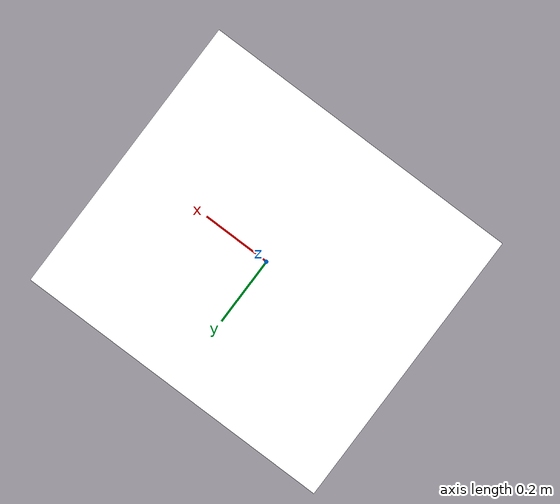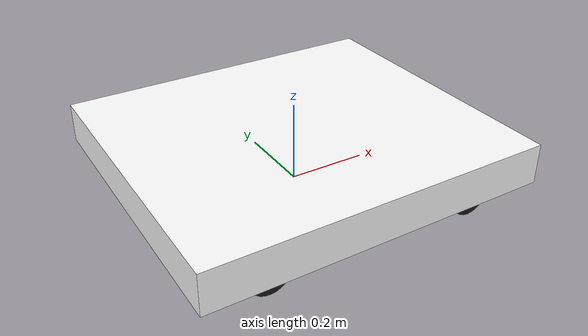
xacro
<?xml version="1.0" ?>
<robot name="amr4" xmlns:xacro="http://www.ros.org/wiki/xacro">

  <xacro:property name="chassis_length"  value="0.85"/>
  <xacro:property name="chassis_width"   value="0.75"/>
  <xacro:property name="chassis_height"  value="0.10"/>

  <xacro:property name="wheel_radius"    value="0.05"/>         <!-- from Config.h WHEEL_RADIUS -->
  <xacro:property name="wheel_width"     value="0.05"/>         <!-- axial thickness — adjust to fit -->

  <xacro:property name="wheel_half_x"   value="0.26"/>          <!-- half wheelbase (front/rear) -->
  <xacro:property name="wheel_half_y"   value="0.315"/>         <!-- half track width (left/right) -->

  <!-- Wheel axle Z above base_link.
       base_link is wheel_radius above ground, so the axle is flush
       with the chassis bottom face → z = 0. -->
  <xacro:property name="wheel_z"        value="0.0"/>

  <xacro:property name="ground_to_base" value="${wheel_radius}"/>

  <!-- Mass values — set to 1.0 (dummy); no collision simulation.
       Update if you ever need realistic dynamics. -->
  <xacro:property name="chassis_mass"   value="1.0"/>
  <xacro:property name="wheel_mass"     value="1.0"/>

  <!-- ============================================================
       MATERIALS
       ============================================================ -->
  <material name="white"><color rgba="1.0 1.0 1.0 1.0"/></material>
  <material name="black"><color rgba="0.1 0.1 0.1 1.0"/></material>
  <material name="grey" ><color rgba="0.5 0.5 0.5 1.0"/></material>

  <!-- ============================================================
       base_footprint  (ground-plane projection, zero-size link)
       ============================================================ -->
  <link name="base_footprint"/>

  <!-- base_footprint → base_link
       Rises by wheel_radius so the 4 wheels sit on the ground. -->
  <joint name="base_footprint_joint" type="fixed">
    <parent link="base_footprint"/>
    <child  link="base_link"/>
    <origin xyz="0 0 ${ground_to_base}" rpy="0 0 0"/>
  </joint>

  <link name="base_link">
    <visual>
      <origin xyz="0 0 ${chassis_height/2}" rpy="0 0 0"/>
      <geometry>
        <box size="${chassis_length} ${chassis_width} ${chassis_height}"/>
      </geometry>
      <material name="white"/>
    </visual>
    <collision>
      <origin xyz="0 0 ${chassis_height/2}" rpy="0 0 0"/>
      <geometry>
        <box size="${chassis_length} ${chassis_width} ${chassis_height}"/>
      </geometry>
    </collision>
    <inertial>
      <origin xyz="0 0 ${chassis_height/2}" rpy="0 0 0"/>
      <mass value="${chassis_mass}"/>
      <inertia
        ixx="${(1.0/12.0)*chassis_mass*(chassis_width*chassis_width   + chassis_height*chassis_height)}"
        iyy="${(1.0/12.0)*chassis_mass*(chassis_length*chassis_length + chassis_height*chassis_height)}"
        izz="${(1.0/12.0)*chassis_mass*(chassis_length*chassis_length + chassis_width*chassis_width)}"
        ixy="0" iyz="0" ixz="0"/>
    </inertial>
  </link>

  <xacro:macro name="mecanum_wheel" params="prefix x_sign y_sign">

    <joint name="${prefix}_wheel_joint" type="continuous">
      <parent link="base_link"/>
      <child  link="${prefix}_wheel_link"/>
      <!-- Wheel centre sits at ±wheel_half_x, ±wheel_half_y, wheel_z (=0)
           relative to base_link. -->
      <origin xyz="${x_sign * wheel_half_x} ${y_sign * wheel_half_y} ${wheel_z}"
              rpy="0 0 0"/>
      <axis xyz="0 1 0"/>
      <dynamics damping="0.01" friction="0.1"/>
    </joint>

    <link name="${prefix}_wheel_link">
      <visual>
        <!-- Rotate the cylinder so its axis aligns with Y (the roll axis) -->
        <origin xyz="0 0 0" rpy="${pi/2} 0 0"/>
        <geometry>
          <cylinder radius="${wheel_radius}" length="${wheel_width}"/>
        </geometry>
        <material name="black"/>
      </visual>
      <collision>
        <origin xyz="0 0 0" rpy="${pi/2} 0 0"/>
        <geometry>
          <cylinder radius="${wheel_radius}" length="${wheel_width}"/>
        </geometry>
      </collision>
      <inertial>
        <origin xyz="0 0 0" rpy="${pi/2} 0 0"/>
        <mass value="${wheel_mass}"/>
        <!-- Solid cylinder (dummy mass = 1.0, not used for collision) -->
        <inertia
          ixx="${(1.0/12.0)*wheel_mass*(3*wheel_radius*wheel_radius + wheel_width*wheel_width)}"
          iyy="${(1.0/2.0 )*wheel_mass*wheel_radius*wheel_radius}"
          izz="${(1.0/12.0)*wheel_mass*(3*wheel_radius*wheel_width  + wheel_width*wheel_width)}"
          ixy="0" iyz="0" ixz="0"/>
      </inertial>
    </link>

  </xacro:macro>

  <!-- ── Instantiate all 4 wheels ─────────────────────────────── -->
  <!-- Front-Left  (FL): x= 0.26  y= 0.32 -->
  <xacro:mecanum_wheel prefix="fl" x_sign=" 1" y_sign=" 1"/>
  <!-- Front-Right (FR): x= 0.26  y=-0.32 -->
  <xacro:mecanum_wheel prefix="fr" x_sign=" 1" y_sign="-1"/>
  <!-- Rear-Left   (RL): x=-0.26  y= 0.32 -->
  <xacro:mecanum_wheel prefix="rl" x_sign="-1" y_sign=" 1"/>
  <!-- Rear-Right  (RR): x=-0.26  y=-0.32 -->
  <xacro:mecanum_wheel prefix="rr" x_sign="-1" y_sign="-1"/>

</robot>
